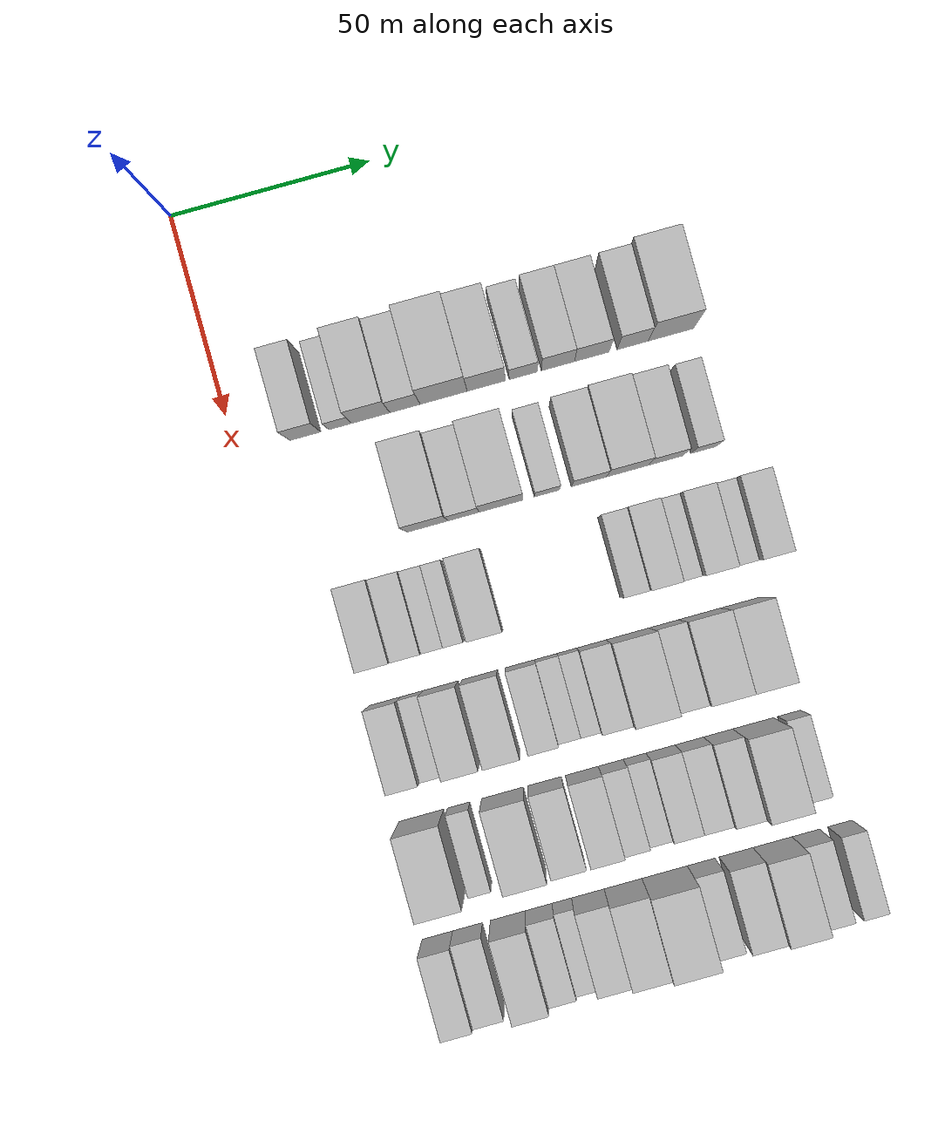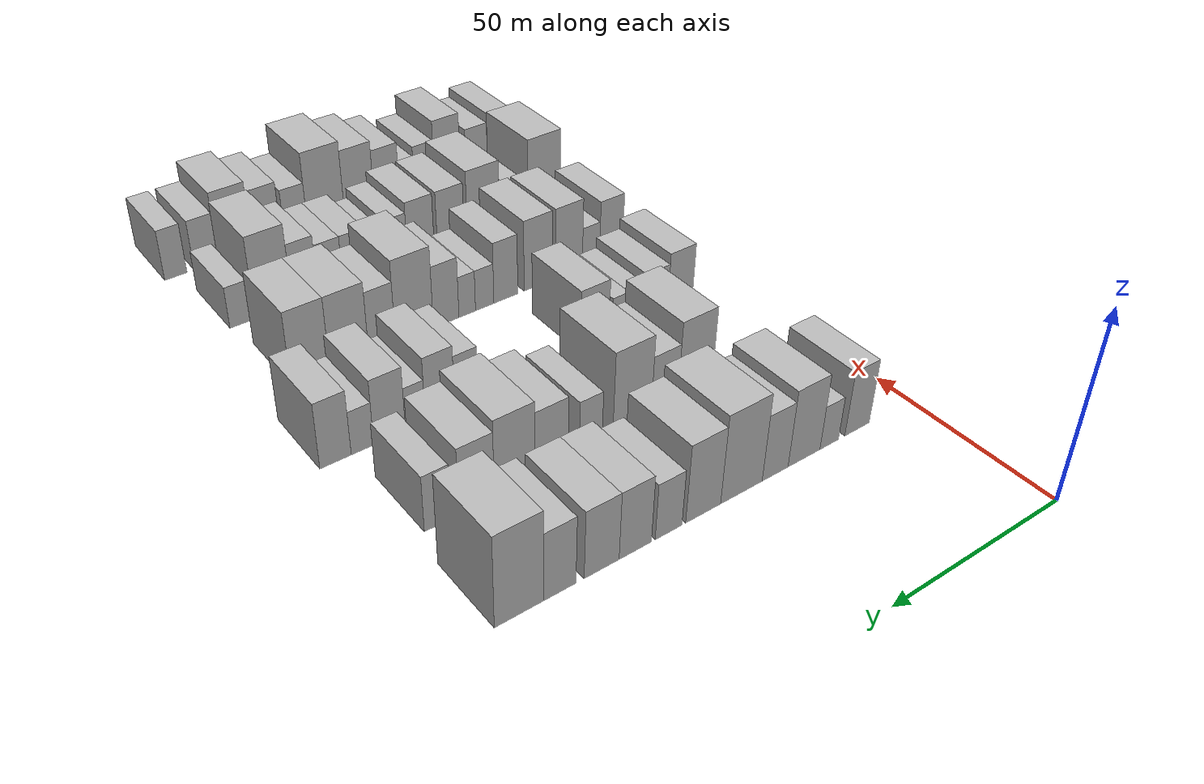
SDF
<sdf version="1.6">
 <world name="default">
  <model name="building_59">
   <static>1</static>
   <pose>50.0000 17.2293 0 0.000000 0.000000 0.000000</pose>
   <link name="link">
    <pose>0 0 9.00 0 0 0</pose>
    <collision name="collision"><geometry><box><size>20.0000 7.7257 18.0000</size></box></geometry></collision>
    <visual name="visual">
     <cast_shadows>0</cast_shadows>
     <geometry><box><size>20.0000 7.7257 18.0000</size></box></geometry>
     <material>
      <script>
       <uri>model://HANNAS_wall/materials/scripts</uri>
       <uri>model://HANNAS_wall/materials/textures</uri>
       <name>vrc/HANNAS_wall</name>
      </script>
     </material>
    </visual>
   </link>
  </model>
  <model name="building_60">
   <static>1</static>
   <pose>50.0000 25.9551 0 0.000000 0.000000 0.000000</pose>
   <link name="link">
    <pose>0 0 6.00 0 0 0</pose>
    <collision name="collision"><geometry><box><size>20.0000 5.7260 12.0000</size></box></geometry></collision>
    <visual name="visual">
     <cast_shadows>0</cast_shadows>
     <geometry><box><size>20.0000 5.7260 12.0000</size></box></geometry>
     <material>
      <script>
       <uri>model://HANNAS_wall/materials/scripts</uri>
       <uri>model://HANNAS_wall/materials/textures</uri>
       <name>vrc/HANNAS_wall</name>
      </script>
     </material>
    </visual>
   </link>
  </model>
  <model name="building_61">
   <static>1</static>
   <pose>50.0000 33.6274 0 0.000000 0.000000 0.000000</pose>
   <link name="link">
    <pose>0 0 10.50 0 0 0</pose>
    <collision name="collision"><geometry><box><size>20.0000 9.6186 21.0000</size></box></geometry></collision>
    <visual name="visual">
     <cast_shadows>0</cast_shadows>
     <geometry><box><size>20.0000 9.6186 21.0000</size></box></geometry>
     <material>
      <script>
       <uri>model://HANNAS_wall/materials/scripts</uri>
       <uri>model://HANNAS_wall/materials/textures</uri>
       <name>vrc/HANNAS_wall</name>
      </script>
     </material>
    </visual>
   </link>
  </model>
  <model name="building_62">
   <static>1</static>
   <pose>50.0000 42.2342 0 0.000000 0.000000 0.000000</pose>
   <link name="link">
    <pose>0 0 9.00 0 0 0</pose>
    <collision name="collision"><geometry><box><size>20.0000 7.5950 18.0000</size></box></geometry></collision>
    <visual name="visual">
     <cast_shadows>0</cast_shadows>
     <geometry><box><size>20.0000 7.5950 18.0000</size></box></geometry>
     <material>
      <script>
       <uri>model://HANNAS_wall/materials/scripts</uri>
       <uri>model://HANNAS_wall/materials/textures</uri>
       <name>vrc/HANNAS_wall</name>
      </script>
     </material>
    </visual>
   </link>
  </model>
  <model name="building_63">
   <static>1</static>
   <pose>50.0000 51.9355 0 0.000000 0.000000 0.000000</pose>
   <link name="link">
    <pose>0 0 12.00 0 0 0</pose>
    <collision name="collision"><geometry><box><size>20.0000 11.8077 24.0000</size></box></geometry></collision>
    <visual name="visual">
     <cast_shadows>0</cast_shadows>
     <geometry><box><size>20.0000 11.8077 24.0000</size></box></geometry>
     <material>
      <script>
       <uri>model://HANNAS_wall/materials/scripts</uri>
       <uri>model://HANNAS_wall/materials/textures</uri>
       <name>vrc/HANNAS_wall</name>
      </script>
     </material>
    </visual>
   </link>
  </model>
  <model name="building_64">
   <static>1</static>
   <pose>50.0000 62.6142 0 0.000000 0.000000 0.000000</pose>
   <link name="link">
    <pose>0 0 10.50 0 0 0</pose>
    <collision name="collision"><geometry><box><size>20.0000 9.5495 21.0000</size></box></geometry></collision>
    <visual name="visual">
     <cast_shadows>0</cast_shadows>
     <geometry><box><size>20.0000 9.5495 21.0000</size></box></geometry>
     <material>
      <script>
       <uri>model://HANNAS_wall/materials/scripts</uri>
       <uri>model://HANNAS_wall/materials/textures</uri>
       <name>vrc/HANNAS_wall</name>
      </script>
     </material>
    </visual>
   </link>
  </model>
  <model name="building_65">
   <static>1</static>
   <pose>50.0000 71.9262 0 0.000000 0.000000 0.000000</pose>
   <link name="link">
    <pose>0 0 7.50 0 0 0</pose>
    <collision name="collision"><geometry><box><size>20.0000 7.0747 15.0000</size></box></geometry></collision>
    <visual name="visual">
     <cast_shadows>0</cast_shadows>
     <geometry><box><size>20.0000 7.0747 15.0000</size></box></geometry>
     <material>
      <script>
       <uri>model://HANNAS_wall/materials/scripts</uri>
       <uri>model://HANNAS_wall/materials/textures</uri>
       <name>vrc/HANNAS_wall</name>
      </script>
     </material>
    </visual>
   </link>
  </model>
  <model name="building_66">
   <static>1</static>
   <pose>50.0000 80.6092 0 0.000000 0.000000 0.000000</pose>
   <link name="link">
    <pose>0 0 9.00 0 0 0</pose>
    <collision name="collision"><geometry><box><size>20.0000 8.2912 18.0000</size></box></geometry></collision>
    <visual name="visual">
     <cast_shadows>0</cast_shadows>
     <geometry><box><size>20.0000 8.2912 18.0000</size></box></geometry>
     <material>
      <script>
       <uri>model://HANNAS_wall/materials/scripts</uri>
       <uri>model://HANNAS_wall/materials/textures</uri>
       <name>vrc/HANNAS_wall</name>
      </script>
     </material>
    </visual>
   </link>
  </model>
  <model name="building_67">
   <static>1</static>
   <pose>50.0000 89.1082 0 0.000000 0.000000 0.000000</pose>
   <link name="link">
    <pose>0 0 9.00 0 0 0</pose>
    <collision name="collision"><geometry><box><size>20.0000 8.7069 18.0000</size></box></geometry></collision>
    <visual name="visual">
     <cast_shadows>0</cast_shadows>
     <geometry><box><size>20.0000 8.7069 18.0000</size></box></geometry>
     <material>
      <script>
       <uri>model://HANNAS_wall/materials/scripts</uri>
       <uri>model://HANNAS_wall/materials/textures</uri>
       <name>vrc/HANNAS_wall</name>
      </script>
     </material>
    </visual>
   </link>
  </model>
  <model name="building_68">
   <static>1</static>
   <pose>50.0000 99.3788 0 0.000000 0.000000 0.000000</pose>
   <link name="link">
    <pose>0 0 9.00 0 0 0</pose>
    <collision name="collision"><geometry><box><size>20.0000 7.8343 18.0000</size></box></geometry></collision>
    <visual name="visual">
     <cast_shadows>0</cast_shadows>
     <geometry><box><size>20.0000 7.8343 18.0000</size></box></geometry>
     <material>
      <script>
       <uri>model://HANNAS_wall/materials/scripts</uri>
       <uri>model://HANNAS_wall/materials/textures</uri>
       <name>vrc/HANNAS_wall</name>
      </script>
     </material>
    </visual>
   </link>
  </model>
  <model name="building_69">
   <static>1</static>
   <pose>50.0000 108.9774 0 0.000000 0.000000 0.000000</pose>
   <link name="link">
    <pose>0 0 12.00 0 0 0</pose>
    <collision name="collision"><geometry><box><size>20.0000 11.3629 24.0000</size></box></geometry></collision>
    <visual name="visual">
     <cast_shadows>0</cast_shadows>
     <geometry><box><size>20.0000 11.3629 24.0000</size></box></geometry>
     <material>
      <script>
       <uri>model://HANNAS_wall/materials/scripts</uri>
       <uri>model://HANNAS_wall/materials/textures</uri>
       <name>vrc/HANNAS_wall</name>
      </script>
     </material>
    </visual>
   </link>
  </model>
  <model name="building_167">
   <static>1</static>
   <pose>79.0000 39.8898 0 0.000000 0.000000 0.000000</pose>
   <link name="link">
    <pose>0 0 12.00 0 0 0</pose>
    <collision name="collision"><geometry><box><size>20.0000 10.2241 24.0000</size></box></geometry></collision>
    <visual name="visual">
     <cast_shadows>0</cast_shadows>
     <geometry><box><size>20.0000 10.2241 24.0000</size></box></geometry>
     <material>
      <script>
       <uri>model://HANNAS_wall/materials/scripts</uri>
       <uri>model://HANNAS_wall/materials/textures</uri>
       <name>vrc/HANNAS_wall</name>
      </script>
     </material>
    </visual>
   </link>
  </model>
  <model name="building_168">
   <static>1</static>
   <pose>79.0000 48.8931 0 0.000000 0.000000 0.000000</pose>
   <link name="link">
    <pose>0 0 9.00 0 0 0</pose>
    <collision name="collision"><geometry><box><size>20.0000 7.7824 18.0000</size></box></geometry></collision>
    <visual name="visual">
     <cast_shadows>0</cast_shadows>
     <geometry><box><size>20.0000 7.7824 18.0000</size></box></geometry>
     <material>
      <script>
       <uri>model://HANNAS_wall/materials/scripts</uri>
       <uri>model://HANNAS_wall/materials/textures</uri>
       <name>vrc/HANNAS_wall</name>
      </script>
     </material>
    </visual>
   </link>
  </model>
  <model name="building_169">
   <static>1</static>
   <pose>79.0000 58.2073 0 0.000000 0.000000 0.000000</pose>
   <link name="link">
    <pose>0 0 12.00 0 0 0</pose>
    <collision name="collision"><geometry><box><size>20.0000 10.8460 24.0000</size></box></geometry></collision>
    <visual name="visual">
     <cast_shadows>0</cast_shadows>
     <geometry><box><size>20.0000 10.8460 24.0000</size></box></geometry>
     <material>
      <script>
       <uri>model://HANNAS_wall/materials/scripts</uri>
       <uri>model://HANNAS_wall/materials/textures</uri>
       <name>vrc/HANNAS_wall</name>
      </script>
     </material>
    </visual>
   </link>
  </model>
  <model name="building_170">
   <static>1</static>
   <pose>79.0000 69.7711 0 0.000000 0.000000 0.000000</pose>
   <link name="link">
    <pose>0 0 7.50 0 0 0</pose>
    <collision name="collision"><geometry><box><size>20.0000 6.2816 15.0000</size></box></geometry></collision>
    <visual name="visual">
     <cast_shadows>0</cast_shadows>
     <geometry><box><size>20.0000 6.2816 15.0000</size></box></geometry>
     <material>
      <script>
       <uri>model://HANNAS_wall/materials/scripts</uri>
       <uri>model://HANNAS_wall/materials/textures</uri>
       <name>vrc/HANNAS_wall</name>
      </script>
     </material>
    </visual>
   </link>
  </model>
  <model name="building_171">
   <static>1</static>
   <pose>79.0000 80.3180 0 0.000000 0.000000 0.000000</pose>
   <link name="link">
    <pose>0 0 9.00 0 0 0</pose>
    <collision name="collision"><geometry><box><size>20.0000 8.8121 18.0000</size></box></geometry></collision>
    <visual name="visual">
     <cast_shadows>0</cast_shadows>
     <geometry><box><size>20.0000 8.8121 18.0000</size></box></geometry>
     <material>
      <script>
       <uri>model://HANNAS_wall/materials/scripts</uri>
       <uri>model://HANNAS_wall/materials/textures</uri>
       <name>vrc/HANNAS_wall</name>
      </script>
     </material>
    </visual>
   </link>
  </model>
  <model name="building_172">
   <static>1</static>
   <pose>79.0000 89.9202 0 0.000000 0.000000 0.000000</pose>
   <link name="link">
    <pose>0 0 10.50 0 0 0</pose>
    <collision name="collision"><geometry><box><size>20.0000 10.3924 21.0000</size></box></geometry></collision>
    <visual name="visual">
     <cast_shadows>0</cast_shadows>
     <geometry><box><size>20.0000 10.3924 21.0000</size></box></geometry>
     <material>
      <script>
       <uri>model://HANNAS_wall/materials/scripts</uri>
       <uri>model://HANNAS_wall/materials/textures</uri>
       <name>vrc/HANNAS_wall</name>
      </script>
     </material>
    </visual>
   </link>
  </model>
  <model name="building_173">
   <static>1</static>
   <pose>79.0000 99.5312 0 0.000000 0.000000 0.000000</pose>
   <link name="link">
    <pose>0 0 9.00 0 0 0</pose>
    <collision name="collision"><geometry><box><size>20.0000 8.8297 18.0000</size></box></geometry></collision>
    <visual name="visual">
     <cast_shadows>0</cast_shadows>
     <geometry><box><size>20.0000 8.8297 18.0000</size></box></geometry>
     <material>
      <script>
       <uri>model://HANNAS_wall/materials/scripts</uri>
       <uri>model://HANNAS_wall/materials/textures</uri>
       <name>vrc/HANNAS_wall</name>
      </script>
     </material>
    </visual>
   </link>
  </model>
  <model name="building_174">
   <static>1</static>
   <pose>79.0000 109.1077 0 0.000000 0.000000 0.000000</pose>
   <link name="link">
    <pose>0 0 7.50 0 0 0</pose>
    <collision name="collision"><geometry><box><size>20.0000 6.3233 15.0000</size></box></geometry></collision>
    <visual name="visual">
     <cast_shadows>0</cast_shadows>
     <geometry><box><size>20.0000 6.3233 15.0000</size></box></geometry>
     <material>
      <script>
       <uri>model://HANNAS_wall/materials/scripts</uri>
       <uri>model://HANNAS_wall/materials/textures</uri>
       <name>vrc/HANNAS_wall</name>
      </script>
     </material>
    </visual>
   </link>
  </model>
  <model name="building_279">
   <static>1</static>
   <pose>108.0000 19.5371 0 0.000000 0.000000 0.000000</pose>
   <link name="link">
    <pose>0 0 9.00 0 0 0</pose>
    <collision name="collision"><geometry><box><size>20.0000 8.0962 18.0000</size></box></geometry></collision>
    <visual name="visual">
     <cast_shadows>0</cast_shadows>
     <geometry><box><size>20.0000 8.0962 18.0000</size></box></geometry>
     <material>
      <script>
       <uri>model://HANNAS_wall/materials/scripts</uri>
       <uri>model://HANNAS_wall/materials/textures</uri>
       <name>vrc/HANNAS_wall</name>
      </script>
     </material>
    </visual>
   </link>
  </model>
  <model name="building_280">
   <static>1</static>
   <pose>108.0000 27.2497 0 0.000000 0.000000 0.000000</pose>
   <link name="link">
    <pose>0 0 7.50 0 0 0</pose>
    <collision name="collision"><geometry><box><size>20.0000 7.3290 15.0000</size></box></geometry></collision>
    <visual name="visual">
     <cast_shadows>0</cast_shadows>
     <geometry><box><size>20.0000 7.3290 15.0000</size></box></geometry>
     <material>
      <script>
       <uri>model://HANNAS_wall/materials/scripts</uri>
       <uri>model://HANNAS_wall/materials/textures</uri>
       <name>vrc/HANNAS_wall</name>
      </script>
     </material>
    </visual>
   </link>
  </model>
  <model name="building_281">
   <static>1</static>
   <pose>108.0000 33.5649 0 0.000000 0.000000 0.000000</pose>
   <link name="link">
    <pose>0 0 6.00 0 0 0</pose>
    <collision name="collision"><geometry><box><size>20.0000 5.3012 12.0000</size></box></geometry></collision>
    <visual name="visual">
     <cast_shadows>0</cast_shadows>
     <geometry><box><size>20.0000 5.3012 12.0000</size></box></geometry>
     <material>
      <script>
       <uri>model://HANNAS_wall/materials/scripts</uri>
       <uri>model://HANNAS_wall/materials/textures</uri>
       <name>vrc/HANNAS_wall</name>
      </script>
     </material>
    </visual>
   </link>
  </model>
  <model name="building_282">
   <static>1</static>
   <pose>108.0000 38.6787 0 0.000000 0.000000 0.000000</pose>
   <link name="link">
    <pose>0 0 6.00 0 0 0</pose>
    <collision name="collision"><geometry><box><size>20.0000 4.9264 12.0000</size></box></geometry></collision>
    <visual name="visual">
     <cast_shadows>0</cast_shadows>
     <geometry><box><size>20.0000 4.9264 12.0000</size></box></geometry>
     <material>
      <script>
       <uri>model://HANNAS_wall/materials/scripts</uri>
       <uri>model://HANNAS_wall/materials/textures</uri>
       <name>vrc/HANNAS_wall</name>
      </script>
     </material>
    </visual>
   </link>
  </model>
  <model name="building_283">
   <static>1</static>
   <pose>108.0000 46.4441 0 0.000000 0.000000 0.000000</pose>
   <link name="link">
    <pose>0 0 9.00 0 0 0</pose>
    <collision name="collision"><geometry><box><size>20.0000 8.6044 18.0000</size></box></geometry></collision>
    <visual name="visual">
     <cast_shadows>0</cast_shadows>
     <geometry><box><size>20.0000 8.6044 18.0000</size></box></geometry>
     <material>
      <script>
       <uri>model://HANNAS_wall/materials/scripts</uri>
       <uri>model://HANNAS_wall/materials/textures</uri>
       <name>vrc/HANNAS_wall</name>
      </script>
     </material>
    </visual>
   </link>
  </model>
  <model name="building_284">
   <static>1</static>
   <pose>108.0000 83.2355 0 0.000000 0.000000 0.000000</pose>
   <link name="link">
    <pose>0 0 7.50 0 0 0</pose>
    <collision name="collision"><geometry><box><size>20.0000 6.3261 15.0000</size></box></geometry></collision>
    <visual name="visual">
     <cast_shadows>0</cast_shadows>
     <geometry><box><size>20.0000 6.3261 15.0000</size></box></geometry>
     <material>
      <script>
       <uri>model://HANNAS_wall/materials/scripts</uri>
       <uri>model://HANNAS_wall/materials/textures</uri>
       <name>vrc/HANNAS_wall</name>
      </script>
     </material>
    </visual>
   </link>
  </model>
  <model name="building_285">
   <static>1</static>
   <pose>108.0000 90.2964 0 0.000000 0.000000 0.000000</pose>
   <link name="link">
    <pose>0 0 9.00 0 0 0</pose>
    <collision name="collision"><geometry><box><size>20.0000 7.7957 18.0000</size></box></geometry></collision>
    <visual name="visual">
     <cast_shadows>0</cast_shadows>
     <geometry><box><size>20.0000 7.7957 18.0000</size></box></geometry>
     <material>
      <script>
       <uri>model://HANNAS_wall/materials/scripts</uri>
       <uri>model://HANNAS_wall/materials/textures</uri>
       <name>vrc/HANNAS_wall</name>
      </script>
     </material>
    </visual>
   </link>
  </model>
  <model name="building_286">
   <static>1</static>
   <pose>108.0000 96.7942 0 0.000000 0.000000 0.000000</pose>
   <link name="link">
    <pose>0 0 6.00 0 0 0</pose>
    <collision name="collision"><geometry><box><size>20.0000 5.2000 12.0000</size></box></geometry></collision>
    <visual name="visual">
     <cast_shadows>0</cast_shadows>
     <geometry><box><size>20.0000 5.2000 12.0000</size></box></geometry>
     <material>
      <script>
       <uri>model://HANNAS_wall/materials/scripts</uri>
       <uri>model://HANNAS_wall/materials/textures</uri>
       <name>vrc/HANNAS_wall</name>
      </script>
     </material>
    </visual>
   </link>
  </model>
  <model name="building_287">
   <static>1</static>
   <pose>108.0000 103.4294 0 0.000000 0.000000 0.000000</pose>
   <link name="link">
    <pose>0 0 9.00 0 0 0</pose>
    <collision name="collision"><geometry><box><size>20.0000 8.0704 18.0000</size></box></geometry></collision>
    <visual name="visual">
     <cast_shadows>0</cast_shadows>
     <geometry><box><size>20.0000 8.0704 18.0000</size></box></geometry>
     <material>
      <script>
       <uri>model://HANNAS_wall/materials/scripts</uri>
       <uri>model://HANNAS_wall/materials/textures</uri>
       <name>vrc/HANNAS_wall</name>
      </script>
     </material>
    </visual>
   </link>
  </model>
  <model name="building_288">
   <static>1</static>
   <pose>108.0000 110.2813 0 0.000000 0.000000 0.000000</pose>
   <link name="link">
    <pose>0 0 6.00 0 0 0</pose>
    <collision name="collision"><geometry><box><size>20.0000 5.6335 12.0000</size></box></geometry></collision>
    <visual name="visual">
     <cast_shadows>0</cast_shadows>
     <geometry><box><size>20.0000 5.6335 12.0000</size></box></geometry>
     <material>
      <script>
       <uri>model://HANNAS_wall/materials/scripts</uri>
       <uri>model://HANNAS_wall/materials/textures</uri>
       <name>vrc/HANNAS_wall</name>
      </script>
     </material>
    </visual>
   </link>
  </model>
  <model name="building_289">
   <static>1</static>
   <pose>108.0000 116.9407 0 0.000000 0.000000 0.000000</pose>
   <link name="link">
    <pose>0 0 9.00 0 0 0</pose>
    <collision name="collision"><geometry><box><size>20.0000 7.6851 18.0000</size></box></geometry></collision>
    <visual name="visual">
     <cast_shadows>0</cast_shadows>
     <geometry><box><size>20.0000 7.6851 18.0000</size></box></geometry>
     <material>
      <script>
       <uri>model://HANNAS_wall/materials/scripts</uri>
       <uri>model://HANNAS_wall/materials/textures</uri>
       <name>vrc/HANNAS_wall</name>
      </script>
     </material>
    </visual>
   </link>
  </model>
  <model name="building_382">
   <static>1</static>
   <pose>137.0000 18.7042 0 0.000000 0.000000 0.000000</pose>
   <link name="link">
    <pose>0 0 9.00 0 0 0</pose>
    <collision name="collision"><geometry><box><size>20.0000 7.7428 18.0000</size></box></geometry></collision>
    <visual name="visual">
     <cast_shadows>0</cast_shadows>
     <geometry><box><size>20.0000 7.7428 18.0000</size></box></geometry>
     <material>
      <script>
       <uri>model://HANNAS_wall/materials/scripts</uri>
       <uri>model://HANNAS_wall/materials/textures</uri>
       <name>vrc/HANNAS_wall</name>
      </script>
     </material>
    </visual>
   </link>
  </model>
  <model name="building_383">
   <static>1</static>
   <pose>137.0000 25.4113 0 0.000000 0.000000 0.000000</pose>
   <link name="link">
    <pose>0 0 6.00 0 0 0</pose>
    <collision name="collision"><geometry><box><size>20.0000 5.6713 12.0000</size></box></geometry></collision>
    <visual name="visual">
     <cast_shadows>0</cast_shadows>
     <geometry><box><size>20.0000 5.6713 12.0000</size></box></geometry>
     <material>
      <script>
       <uri>model://HANNAS_wall/materials/scripts</uri>
       <uri>model://HANNAS_wall/materials/textures</uri>
       <name>vrc/HANNAS_wall</name>
      </script>
     </material>
    </visual>
   </link>
  </model>
  <model name="building_384">
   <static>1</static>
   <pose>137.0000 32.6563 0 0.000000 0.000000 0.000000</pose>
   <link name="link">
    <pose>0 0 10.50 0 0 0</pose>
    <collision name="collision"><geometry><box><size>20.0000 8.8187 21.0000</size></box></geometry></collision>
    <visual name="visual">
     <cast_shadows>0</cast_shadows>
     <geometry><box><size>20.0000 8.8187 21.0000</size></box></geometry>
     <material>
      <script>
       <uri>model://HANNAS_wall/materials/scripts</uri>
       <uri>model://HANNAS_wall/materials/textures</uri>
       <name>vrc/HANNAS_wall</name>
      </script>
     </material>
    </visual>
   </link>
  </model>
  <model name="building_385">
   <static>1</static>
   <pose>137.0000 42.4761 0 0.000000 0.000000 0.000000</pose>
   <link name="link">
    <pose>0 0 10.50 0 0 0</pose>
    <collision name="collision"><geometry><box><size>20.0000 8.8211 21.0000</size></box></geometry></collision>
    <visual name="visual">
     <cast_shadows>0</cast_shadows>
     <geometry><box><size>20.0000 8.8211 21.0000</size></box></geometry>
     <material>
      <script>
       <uri>model://HANNAS_wall/materials/scripts</uri>
       <uri>model://HANNAS_wall/materials/textures</uri>
       <name>vrc/HANNAS_wall</name>
      </script>
     </material>
    </visual>
   </link>
  </model>
  <model name="building_386">
   <static>1</static>
   <pose>137.0000 52.5513 0 0.000000 0.000000 0.000000</pose>
   <link name="link">
    <pose>0 0 9.00 0 0 0</pose>
    <collision name="collision"><geometry><box><size>20.0000 7.3292 18.0000</size></box></geometry></collision>
    <visual name="visual">
     <cast_shadows>0</cast_shadows>
     <geometry><box><size>20.0000 7.3292 18.0000</size></box></geometry>
     <material>
      <script>
       <uri>model://HANNAS_wall/materials/scripts</uri>
       <uri>model://HANNAS_wall/materials/textures</uri>
       <name>vrc/HANNAS_wall</name>
      </script>
     </material>
    </visual>
   </link>
  </model>
  <model name="building_387">
   <static>1</static>
   <pose>137.0000 58.9819 0 0.000000 0.000000 0.000000</pose>
   <link name="link">
    <pose>0 0 6.00 0 0 0</pose>
    <collision name="collision"><geometry><box><size>20.0000 5.5321 12.0000</size></box></geometry></collision>
    <visual name="visual">
     <cast_shadows>0</cast_shadows>
     <geometry><box><size>20.0000 5.5321 12.0000</size></box></geometry>
     <material>
      <script>
       <uri>model://HANNAS_wall/materials/scripts</uri>
       <uri>model://HANNAS_wall/materials/textures</uri>
       <name>vrc/HANNAS_wall</name>
      </script>
     </material>
    </visual>
   </link>
  </model>
  <model name="building_388">
   <static>1</static>
   <pose>137.0000 64.2066 0 0.000000 0.000000 0.000000</pose>
   <link name="link">
    <pose>0 0 6.00 0 0 0</pose>
    <collision name="collision"><geometry><box><size>20.0000 4.9172 12.0000</size></box></geometry></collision>
    <visual name="visual">
     <cast_shadows>0</cast_shadows>
     <geometry><box><size>20.0000 4.9172 12.0000</size></box></geometry>
     <material>
      <script>
       <uri>model://HANNAS_wall/materials/scripts</uri>
       <uri>model://HANNAS_wall/materials/textures</uri>
       <name>vrc/HANNAS_wall</name>
      </script>
     </material>
    </visual>
   </link>
  </model>
  <model name="building_389">
   <static>1</static>
   <pose>137.0000 70.3898 0 0.000000 0.000000 0.000000</pose>
   <link name="link">
    <pose>0 0 9.00 0 0 0</pose>
    <collision name="collision"><geometry><box><size>20.0000 7.4493 18.0000</size></box></geometry></collision>
    <visual name="visual">
     <cast_shadows>0</cast_shadows>
     <geometry><box><size>20.0000 7.4493 18.0000</size></box></geometry>
     <material>
      <script>
       <uri>model://HANNAS_wall/materials/scripts</uri>
       <uri>model://HANNAS_wall/materials/textures</uri>
       <name>vrc/HANNAS_wall</name>
      </script>
     </material>
    </visual>
   </link>
  </model>
  <model name="building_390">
   <static>1</static>
   <pose>137.0000 79.4764 0 0.000000 0.000000 0.000000</pose>
   <link name="link">
    <pose>0 0 12.00 0 0 0</pose>
    <collision name="collision"><geometry><box><size>20.0000 10.7238 24.0000</size></box></geometry></collision>
    <visual name="visual">
     <cast_shadows>0</cast_shadows>
     <geometry><box><size>20.0000 10.7238 24.0000</size></box></geometry>
     <material>
      <script>
       <uri>model://HANNAS_wall/materials/scripts</uri>
       <uri>model://HANNAS_wall/materials/textures</uri>
       <name>vrc/HANNAS_wall</name>
      </script>
     </material>
    </visual>
   </link>
  </model>
  <model name="building_391">
   <static>1</static>
   <pose>137.0000 88.5669 0 0.000000 0.000000 0.000000</pose>
   <link name="link">
    <pose>0 0 9.00 0 0 0</pose>
    <collision name="collision"><geometry><box><size>20.0000 7.4572 18.0000</size></box></geometry></collision>
    <visual name="visual">
     <cast_shadows>0</cast_shadows>
     <geometry><box><size>20.0000 7.4572 18.0000</size></box></geometry>
     <material>
      <script>
       <uri>model://HANNAS_wall/materials/scripts</uri>
       <uri>model://HANNAS_wall/materials/textures</uri>
       <name>vrc/HANNAS_wall</name>
      </script>
     </material>
    </visual>
   </link>
  </model>
  <model name="building_392">
   <static>1</static>
   <pose>137.0000 97.5372 0 0.000000 0.000000 0.000000</pose>
   <link name="link">
    <pose>0 0 10.50 0 0 0</pose>
    <collision name="collision"><geometry><box><size>20.0000 10.4835 21.0000</size></box></geometry></collision>
    <visual name="visual">
     <cast_shadows>0</cast_shadows>
     <geometry><box><size>20.0000 10.4835 21.0000</size></box></geometry>
     <material>
      <script>
       <uri>model://HANNAS_wall/materials/scripts</uri>
       <uri>model://HANNAS_wall/materials/textures</uri>
       <name>vrc/HANNAS_wall</name>
      </script>
     </material>
    </visual>
   </link>
  </model>
  <model name="building_393">
   <static>1</static>
   <pose>137.0000 107.8632 0 0.000000 0.000000 0.000000</pose>
   <link name="link">
    <pose>0 0 10.50 0 0 0</pose>
    <collision name="collision"><geometry><box><size>20.0000 10.1684 21.0000</size></box></geometry></collision>
    <visual name="visual">
     <cast_shadows>0</cast_shadows>
     <geometry><box><size>20.0000 10.1684 21.0000</size></box></geometry>
     <material>
      <script>
       <uri>model://HANNAS_wall/materials/scripts</uri>
       <uri>model://HANNAS_wall/materials/textures</uri>
       <name>vrc/HANNAS_wall</name>
      </script>
     </material>
    </visual>
   </link>
  </model>
  <model name="building_502">
   <static>1</static>
   <pose>166.0000 19.6974 0 0.000000 0.000000 0.000000</pose>
   <link name="link">
    <pose>0 0 12.00 0 0 0</pose>
    <collision name="collision"><geometry><box><size>20.0000 11.1250 24.0000</size></box></geometry></collision>
    <visual name="visual">
     <cast_shadows>0</cast_shadows>
     <geometry><box><size>20.0000 11.1250 24.0000</size></box></geometry>
     <material>
      <script>
       <uri>model://HANNAS_wall/materials/scripts</uri>
       <uri>model://HANNAS_wall/materials/textures</uri>
       <name>vrc/HANNAS_wall</name>
      </script>
     </material>
    </visual>
   </link>
  </model>
  <model name="building_503">
   <static>1</static>
   <pose>166.0000 29.0433 0 0.000000 0.000000 0.000000</pose>
   <link name="link">
    <pose>0 0 6.00 0 0 0</pose>
    <collision name="collision"><geometry><box><size>20.0000 5.5669 12.0000</size></box></geometry></collision>
    <visual name="visual">
     <cast_shadows>0</cast_shadows>
     <geometry><box><size>20.0000 5.5669 12.0000</size></box></geometry>
     <material>
      <script>
       <uri>model://HANNAS_wall/materials/scripts</uri>
       <uri>model://HANNAS_wall/materials/textures</uri>
       <name>vrc/HANNAS_wall</name>
      </script>
     </material>
    </visual>
   </link>
  </model>
  <model name="building_504">
   <static>1</static>
   <pose>166.0000 40.0652 0 0.000000 0.000000 0.000000</pose>
   <link name="link">
    <pose>0 0 10.50 0 0 0</pose>
    <collision name="collision"><geometry><box><size>20.0000 10.4769 21.0000</size></box></geometry></collision>
    <visual name="visual">
     <cast_shadows>0</cast_shadows>
     <geometry><box><size>20.0000 10.4769 21.0000</size></box></geometry>
     <material>
      <script>
       <uri>model://HANNAS_wall/materials/scripts</uri>
       <uri>model://HANNAS_wall/materials/textures</uri>
       <name>vrc/HANNAS_wall</name>
      </script>
     </material>
    </visual>
   </link>
  </model>
  <model name="building_505">
   <static>1</static>
   <pose>166.0000 50.5629 0 0.000000 0.000000 0.000000</pose>
   <link name="link">
    <pose>0 0 9.00 0 0 0</pose>
    <collision name="collision"><geometry><box><size>20.0000 8.5185 18.0000</size></box></geometry></collision>
    <visual name="visual">
     <cast_shadows>0</cast_shadows>
     <geometry><box><size>20.0000 8.5185 18.0000</size></box></geometry>
     <material>
      <script>
       <uri>model://HANNAS_wall/materials/scripts</uri>
       <uri>model://HANNAS_wall/materials/textures</uri>
       <name>vrc/HANNAS_wall</name>
      </script>
     </material>
    </visual>
   </link>
  </model>
  <model name="building_506">
   <static>1</static>
   <pose>166.0000 59.9392 0 0.000000 0.000000 0.000000</pose>
   <link name="link">
    <pose>0 0 9.00 0 0 0</pose>
    <collision name="collision"><geometry><box><size>20.0000 8.2341 18.0000</size></box></geometry></collision>
    <visual name="visual">
     <cast_shadows>0</cast_shadows>
     <geometry><box><size>20.0000 8.2341 18.0000</size></box></geometry>
     <material>
      <script>
       <uri>model://HANNAS_wall/materials/scripts</uri>
       <uri>model://HANNAS_wall/materials/textures</uri>
       <name>vrc/HANNAS_wall</name>
      </script>
     </material>
    </visual>
   </link>
  </model>
  <model name="building_507">
   <static>1</static>
   <pose>166.0000 67.1986 0 0.000000 0.000000 0.000000</pose>
   <link name="link">
    <pose>0 0 7.50 0 0 0</pose>
    <collision name="collision"><geometry><box><size>20.0000 6.2848 15.0000</size></box></geometry></collision>
    <visual name="visual">
     <cast_shadows>0</cast_shadows>
     <geometry><box><size>20.0000 6.2848 15.0000</size></box></geometry>
     <material>
      <script>
       <uri>model://HANNAS_wall/materials/scripts</uri>
       <uri>model://HANNAS_wall/materials/textures</uri>
       <name>vrc/HANNAS_wall</name>
      </script>
     </material>
    </visual>
   </link>
  </model>
  <model name="building_508">
   <static>1</static>
   <pose>166.0000 73.1877 0 0.000000 0.000000 0.000000</pose>
   <link name="link">
    <pose>0 0 6.00 0 0 0</pose>
    <collision name="collision"><geometry><box><size>20.0000 5.6935 12.0000</size></box></geometry></collision>
    <visual name="visual">
     <cast_shadows>0</cast_shadows>
     <geometry><box><size>20.0000 5.6935 12.0000</size></box></geometry>
     <material>
      <script>
       <uri>model://HANNAS_wall/materials/scripts</uri>
       <uri>model://HANNAS_wall/materials/textures</uri>
       <name>vrc/HANNAS_wall</name>
      </script>
     </material>
    </visual>
   </link>
  </model>
  <model name="building_509">
   <static>1</static>
   <pose>166.0000 79.7025 0 0.000000 0.000000 0.000000</pose>
   <link name="link">
    <pose>0 0 7.50 0 0 0</pose>
    <collision name="collision"><geometry><box><size>20.0000 7.3360 15.0000</size></box></geometry></collision>
    <visual name="visual">
     <cast_shadows>0</cast_shadows>
     <geometry><box><size>20.0000 7.3360 15.0000</size></box></geometry>
     <material>
      <script>
       <uri>model://HANNAS_wall/materials/scripts</uri>
       <uri>model://HANNAS_wall/materials/textures</uri>
       <name>vrc/HANNAS_wall</name>
      </script>
     </material>
    </visual>
   </link>
  </model>
  <model name="building_510">
   <static>1</static>
   <pose>166.0000 86.9633 0 0.000000 0.000000 0.000000</pose>
   <link name="link">
    <pose>0 0 7.50 0 0 0</pose>
    <collision name="collision"><geometry><box><size>20.0000 7.1857 15.0000</size></box></geometry></collision>
    <visual name="visual">
     <cast_shadows>0</cast_shadows>
     <geometry><box><size>20.0000 7.1857 15.0000</size></box></geometry>
     <material>
      <script>
       <uri>model://HANNAS_wall/materials/scripts</uri>
       <uri>model://HANNAS_wall/materials/textures</uri>
       <name>vrc/HANNAS_wall</name>
      </script>
     </material>
    </visual>
   </link>
  </model>
  <model name="building_511">
   <static>1</static>
   <pose>166.0000 94.2095 0 0.000000 0.000000 0.000000</pose>
   <link name="link">
    <pose>0 0 9.00 0 0 0</pose>
    <collision name="collision"><geometry><box><size>20.0000 7.3066 18.0000</size></box></geometry></collision>
    <visual name="visual">
     <cast_shadows>0</cast_shadows>
     <geometry><box><size>20.0000 7.3066 18.0000</size></box></geometry>
     <material>
      <script>
       <uri>model://HANNAS_wall/materials/scripts</uri>
       <uri>model://HANNAS_wall/materials/textures</uri>
       <name>vrc/HANNAS_wall</name>
      </script>
     </material>
    </visual>
   </link>
  </model>
  <model name="building_512">
   <static>1</static>
   <pose>166.0000 102.9979 0 0.000000 0.000000 0.000000</pose>
   <link name="link">
    <pose>0 0 12.00 0 0 0</pose>
    <collision name="collision"><geometry><box><size>20.0000 10.2702 24.0000</size></box></geometry></collision>
    <visual name="visual">
     <cast_shadows>0</cast_shadows>
     <geometry><box><size>20.0000 10.2702 24.0000</size></box></geometry>
     <material>
      <script>
       <uri>model://HANNAS_wall/materials/scripts</uri>
       <uri>model://HANNAS_wall/materials/textures</uri>
       <name>vrc/HANNAS_wall</name>
      </script>
     </material>
    </visual>
   </link>
  </model>
  <model name="building_513">
   <static>1</static>
   <pose>166.0000 112.0356 0 0.000000 0.000000 0.000000</pose>
   <link name="link">
    <pose>0 0 6.00 0 0 0</pose>
    <collision name="collision"><geometry><box><size>20.0000 5.8053 12.0000</size></box></geometry></collision>
    <visual name="visual">
     <cast_shadows>0</cast_shadows>
     <geometry><box><size>20.0000 5.8053 12.0000</size></box></geometry>
     <material>
      <script>
       <uri>model://HANNAS_wall/materials/scripts</uri>
       <uri>model://HANNAS_wall/materials/textures</uri>
       <name>vrc/HANNAS_wall</name>
      </script>
     </material>
    </visual>
   </link>
  </model>
  <model name="building_613">
   <static>1</static>
   <pose>195.0000 15.6586 0 0.000000 0.000000 0.000000</pose>
   <link name="link">
    <pose>0 0 9.00 0 0 0</pose>
    <collision name="collision"><geometry><box><size>20.0000 7.6346 18.0000</size></box></geometry></collision>
    <visual name="visual">
     <cast_shadows>0</cast_shadows>
     <geometry><box><size>20.0000 7.6346 18.0000</size></box></geometry>
     <material>
      <script>
       <uri>model://HANNAS_wall/materials/scripts</uri>
       <uri>model://HANNAS_wall/materials/textures</uri>
       <name>vrc/HANNAS_wall</name>
      </script>
     </material>
    </visual>
   </link>
  </model>
  <model name="building_614">
   <static>1</static>
   <pose>195.0000 23.2105 0 0.000000 0.000000 0.000000</pose>
   <link name="link">
    <pose>0 0 7.50 0 0 0</pose>
    <collision name="collision"><geometry><box><size>20.0000 7.4694 15.0000</size></box></geometry></collision>
    <visual name="visual">
     <cast_shadows>0</cast_shadows>
     <geometry><box><size>20.0000 7.4694 15.0000</size></box></geometry>
     <material>
      <script>
       <uri>model://HANNAS_wall/materials/scripts</uri>
       <uri>model://HANNAS_wall/materials/textures</uri>
       <name>vrc/HANNAS_wall</name>
      </script>
     </material>
    </visual>
   </link>
  </model>
  <model name="building_615">
   <static>1</static>
   <pose>195.0000 33.3360 0 0.000000 0.000000 0.000000</pose>
   <link name="link">
    <pose>0 0 10.50 0 0 0</pose>
    <collision name="collision"><geometry><box><size>20.0000 8.7815 21.0000</size></box></geometry></collision>
    <visual name="visual">
     <cast_shadows>0</cast_shadows>
     <geometry><box><size>20.0000 8.7815 21.0000</size></box></geometry>
     <material>
      <script>
       <uri>model://HANNAS_wall/materials/scripts</uri>
       <uri>model://HANNAS_wall/materials/textures</uri>
       <name>vrc/HANNAS_wall</name>
      </script>
     </material>
    </visual>
   </link>
  </model>
  <model name="building_616">
   <static>1</static>
   <pose>195.0000 41.0913 0 0.000000 0.000000 0.000000</pose>
   <link name="link">
    <pose>0 0 7.50 0 0 0</pose>
    <collision name="collision"><geometry><box><size>20.0000 6.7292 15.0000</size></box></geometry></collision>
    <visual name="visual">
     <cast_shadows>0</cast_shadows>
     <geometry><box><size>20.0000 6.7292 15.0000</size></box></geometry>
     <material>
      <script>
       <uri>model://HANNAS_wall/materials/scripts</uri>
       <uri>model://HANNAS_wall/materials/textures</uri>
       <name>vrc/HANNAS_wall</name>
      </script>
     </material>
    </visual>
   </link>
  </model>
  <model name="building_617">
   <static>1</static>
   <pose>195.0000 46.9064 0 0.000000 0.000000 0.000000</pose>
   <link name="link">
    <pose>0 0 6.00 0 0 0</pose>
    <collision name="collision"><geometry><box><size>20.0000 4.9011 12.0000</size></box></geometry></collision>
    <visual name="visual">
     <cast_shadows>0</cast_shadows>
     <geometry><box><size>20.0000 4.9011 12.0000</size></box></geometry>
     <material>
      <script>
       <uri>model://HANNAS_wall/materials/scripts</uri>
       <uri>model://HANNAS_wall/materials/textures</uri>
       <name>vrc/HANNAS_wall</name>
      </script>
     </material>
    </visual>
   </link>
  </model>
  <model name="building_618">
   <static>1</static>
   <pose>195.0000 53.4511 0 0.000000 0.000000 0.000000</pose>
   <link name="link">
    <pose>0 0 9.00 0 0 0</pose>
    <collision name="collision"><geometry><box><size>20.0000 8.1882 18.0000</size></box></geometry></collision>
    <visual name="visual">
     <cast_shadows>0</cast_shadows>
     <geometry><box><size>20.0000 8.1882 18.0000</size></box></geometry>
     <material>
      <script>
       <uri>model://HANNAS_wall/materials/scripts</uri>
       <uri>model://HANNAS_wall/materials/textures</uri>
       <name>vrc/HANNAS_wall</name>
      </script>
     </material>
    </visual>
   </link>
  </model>
  <model name="building_619">
   <static>1</static>
   <pose>195.0000 62.2831 0 0.000000 0.000000 0.000000</pose>
   <link name="link">
    <pose>0 0 10.50 0 0 0</pose>
    <collision name="collision"><geometry><box><size>20.0000 9.4758 21.0000</size></box></geometry></collision>
    <visual name="visual">
     <cast_shadows>0</cast_shadows>
     <geometry><box><size>20.0000 9.4758 21.0000</size></box></geometry>
     <material>
      <script>
       <uri>model://HANNAS_wall/materials/scripts</uri>
       <uri>model://HANNAS_wall/materials/textures</uri>
       <name>vrc/HANNAS_wall</name>
      </script>
     </material>
    </visual>
   </link>
  </model>
  <model name="building_620">
   <static>1</static>
   <pose>195.0000 72.7295 0 0.000000 0.000000 0.000000</pose>
   <link name="link">
    <pose>0 0 12.00 0 0 0</pose>
    <collision name="collision"><geometry><box><size>20.0000 11.4170 24.0000</size></box></geometry></collision>
    <visual name="visual">
     <cast_shadows>0</cast_shadows>
     <geometry><box><size>20.0000 11.4170 24.0000</size></box></geometry>
     <material>
      <script>
       <uri>model://HANNAS_wall/materials/scripts</uri>
       <uri>model://HANNAS_wall/materials/textures</uri>
       <name>vrc/HANNAS_wall</name>
      </script>
     </material>
    </visual>
   </link>
  </model>
  <model name="building_621">
   <static>1</static>
   <pose>195.0000 81.9197 0 0.000000 0.000000 0.000000</pose>
   <link name="link">
    <pose>0 0 7.50 0 0 0</pose>
    <collision name="collision"><geometry><box><size>20.0000 6.9634 15.0000</size></box></geometry></collision>
    <visual name="visual">
     <cast_shadows>0</cast_shadows>
     <geometry><box><size>20.0000 6.9634 15.0000</size></box></geometry>
     <material>
      <script>
       <uri>model://HANNAS_wall/materials/scripts</uri>
       <uri>model://HANNAS_wall/materials/textures</uri>
       <name>vrc/HANNAS_wall</name>
      </script>
     </material>
    </visual>
   </link>
  </model>
  <model name="building_622">
   <static>1</static>
   <pose>195.0000 90.6772 0 0.000000 0.000000 0.000000</pose>
   <link name="link">
    <pose>0 0 9.00 0 0 0</pose>
    <collision name="collision"><geometry><box><size>20.0000 8.5516 18.0000</size></box></geometry></collision>
    <visual name="visual">
     <cast_shadows>0</cast_shadows>
     <geometry><box><size>20.0000 8.5516 18.0000</size></box></geometry>
     <material>
      <script>
       <uri>model://HANNAS_wall/materials/scripts</uri>
       <uri>model://HANNAS_wall/materials/textures</uri>
       <name>vrc/HANNAS_wall</name>
      </script>
     </material>
    </visual>
   </link>
  </model>
  <model name="building_623">
   <static>1</static>
   <pose>195.0000 99.8763 0 0.000000 0.000000 0.000000</pose>
   <link name="link">
    <pose>0 0 10.50 0 0 0</pose>
    <collision name="collision"><geometry><box><size>20.0000 9.8465 21.0000</size></box></geometry></collision>
    <visual name="visual">
     <cast_shadows>0</cast_shadows>
     <geometry><box><size>20.0000 9.8465 21.0000</size></box></geometry>
     <material>
      <script>
       <uri>model://HANNAS_wall/materials/scripts</uri>
       <uri>model://HANNAS_wall/materials/textures</uri>
       <name>vrc/HANNAS_wall</name>
      </script>
     </material>
    </visual>
   </link>
  </model>
  <model name="building_624">
   <static>1</static>
   <pose>195.0000 108.2539 0 0.000000 0.000000 0.000000</pose>
   <link name="link">
    <pose>0 0 7.50 0 0 0</pose>
    <collision name="collision"><geometry><box><size>20.0000 6.9087 15.0000</size></box></geometry></collision>
    <visual name="visual">
     <cast_shadows>0</cast_shadows>
     <geometry><box><size>20.0000 6.9087 15.0000</size></box></geometry>
     <material>
      <script>
       <uri>model://HANNAS_wall/materials/scripts</uri>
       <uri>model://HANNAS_wall/materials/textures</uri>
       <name>vrc/HANNAS_wall</name>
      </script>
     </material>
    </visual>
   </link>
  </model>
  <model name="building_625">
   <static>1</static>
   <pose>195.0000 116.7829 0 0.000000 0.000000 0.000000</pose>
   <link name="link">
    <pose>0 0 7.50 0 0 0</pose>
    <collision name="collision"><geometry><box><size>20.0000 6.1494 15.0000</size></box></geometry></collision>
    <visual name="visual">
     <cast_shadows>0</cast_shadows>
     <geometry><box><size>20.0000 6.1494 15.0000</size></box></geometry>
     <material>
      <script>
       <uri>model://HANNAS_wall/materials/scripts</uri>
       <uri>model://HANNAS_wall/materials/textures</uri>
       <name>vrc/HANNAS_wall</name>
      </script>
     </material>
    </visual>
   </link>
  </model>
 </world>
</sdf>
